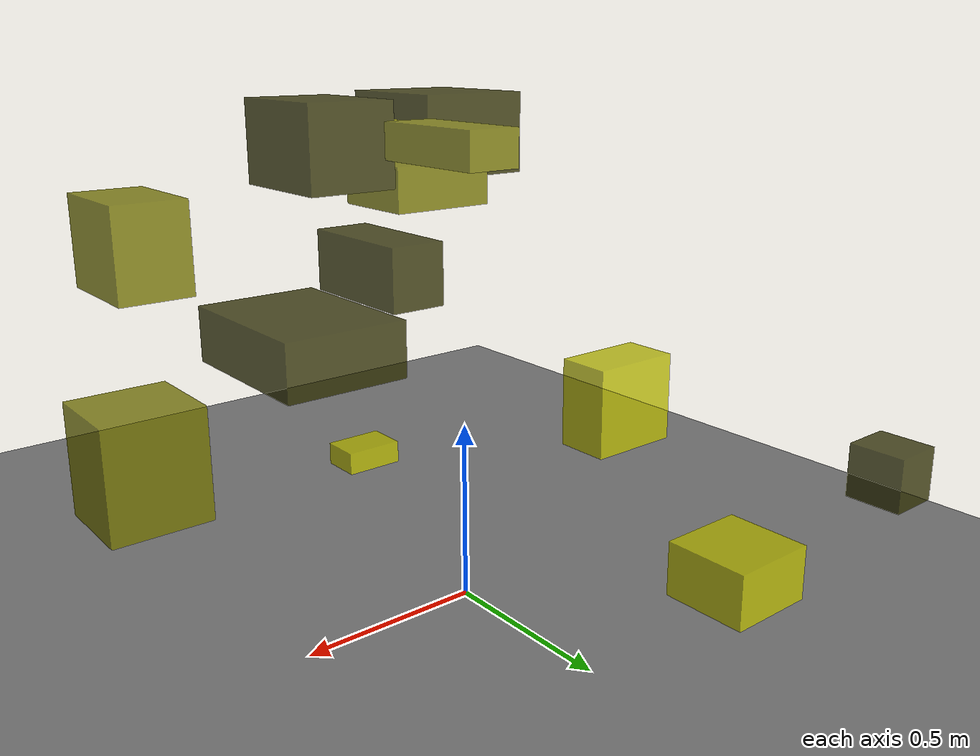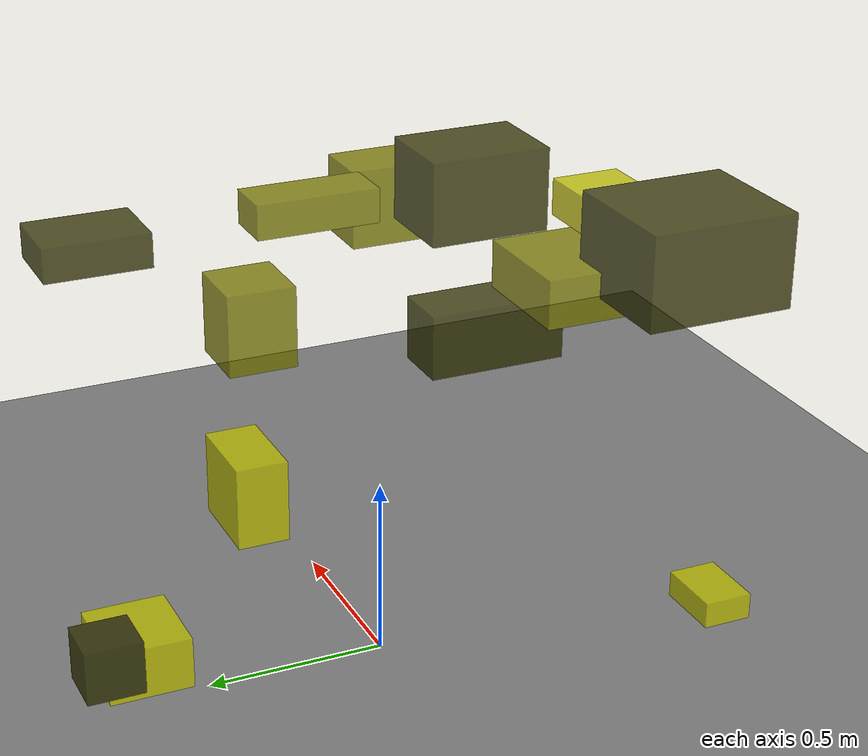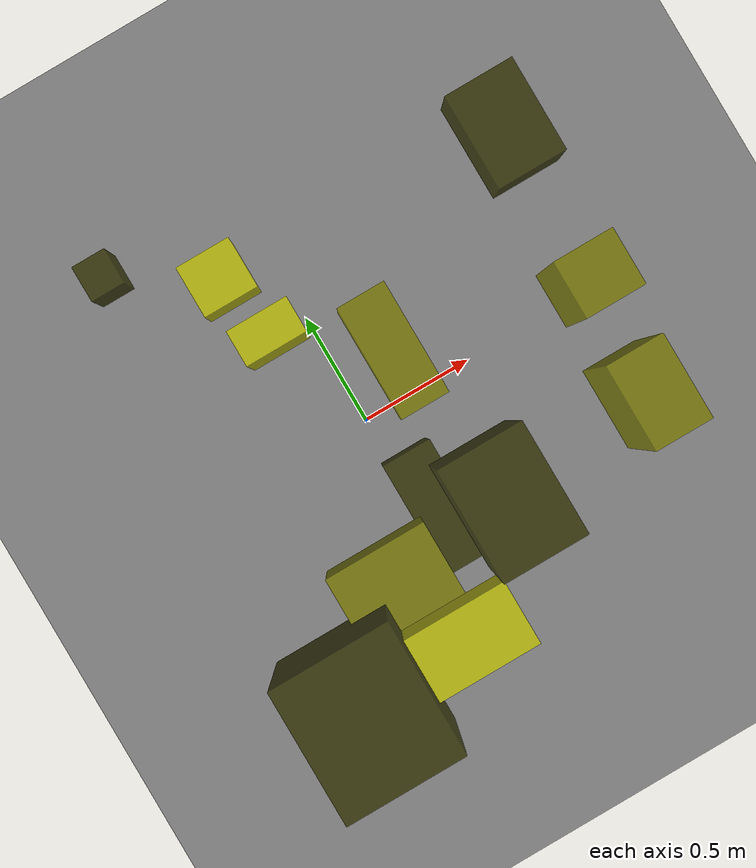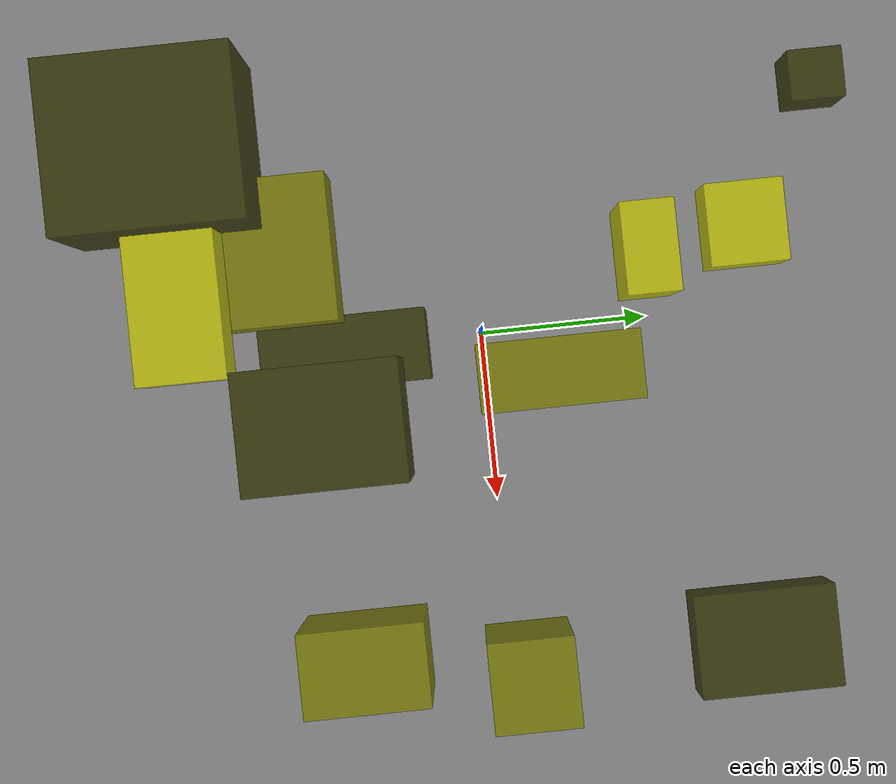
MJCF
<?xml version="1.0"?>
<mujoco model="obstacle_scene">
  <compiler angle="radian" coordinate="local"/>
  <option timestep="0.001" gravity="0 0 -9.81"/>

  <asset>
    <material name="obstacle_mat" rgba="0.8 0.8 0.0 0.8"/>
    <material name="ground_mat" rgba="0.5 0.5 0.5 1"/>
  </asset>

  <worldbody>
    <!-- Ground plane -->
    <geom name="ground" type="plane" size="3 3 0.1" material="ground_mat"/>

    <!-- Obstacles -->
    <body name="obstacle_0" pos="-0.401327 -0.650385 1.217665">
      <geom name="obs_0" type="box" size="0.177792 0.197925 0.124708" rgba="0.2 0.2 0.0 0.8"/>
    </body>
    <body name="obstacle_1" pos="0.140206 0.134788 1.266037">
      <geom name="obs_1" type="box" size="0.070131 0.165940 0.046101" rgba="0.5 0.5 0.0 0.8"/>
    </body>
    <body name="obstacle_2" pos="-0.067933 -0.632482 1.212226">
      <geom name="obs_2" type="box" size="0.154596 0.094752 0.050661" rgba="0.8 0.8 0.0 0.8"/>
    </body>
    <body name="obstacle_3" pos="0.045046 -0.325661 0.889522">
      <geom name="obs_3" type="box" size="0.081304 0.190329 0.088639" rgba="0.2 0.2 0.0 0.8"/>
    </body>
    <body name="obstacle_4" pos="0.894988 0.034171 0.640609">
      <geom name="obs_4" type="box" size="0.111906 0.107751 0.128795" rgba="0.5 0.5 0.0 0.8"/>
    </body>
    <body name="obstacle_5" pos="-0.139755 0.424164 0.657998">
      <geom name="obs_5" type="box" size="0.114200 0.066611 0.108137" rgba="0.8 0.8 0.0 0.8"/>
    </body>
    <body name="obstacle_6" pos="0.780271 0.549764 0.997807">
      <geom name="obs_6" type="box" size="0.113669 0.156766 0.050973" rgba="0.2 0.2 0.0 0.8"/>
    </body>
    <body name="obstacle_7" pos="-0.174647 -0.445134 1.095431">
      <geom name="obs_7" type="box" size="0.158123 0.133952 0.065017" rgba="0.5 0.5 0.0 0.8"/>
    </body>
    <body name="obstacle_8" pos="-0.246108 -0.906153 0.080919">
      <geom name="obs_8" type="box" size="0.097639 0.070093 0.037820" rgba="0.8 0.8 0.0 0.8"/>
    </body>
    <body name="obstacle_9" pos="0.202368 -0.352605 1.237060">
      <geom name="obs_9" type="box" size="0.124903 0.166678 0.114814" rgba="0.2 0.2 0.0 0.8"/>
    </body>
    <body name="obstacle_10" pos="0.733331 -0.335956 1.033095">
      <geom name="obs_10" type="box" size="0.091775 0.137392 0.115454" rgba="0.5 0.5 0.0 0.8"/>
    </body>
    <body name="obstacle_11" pos="-0.215229 0.753593 0.306304">
      <geom name="obs_11" type="box" size="0.114454 0.108220 0.069159" rgba="0.8 0.8 0.0 0.8"/>
    </body>
    <body name="obstacle_12" pos="-0.555423 0.920896 0.518130">
      <geom name="obs_12" type="box" size="0.065415 0.069579 0.067019" rgba="0.2 0.2 0.0 0.8"/>
    </body>
  </worldbody>
</mujoco>
